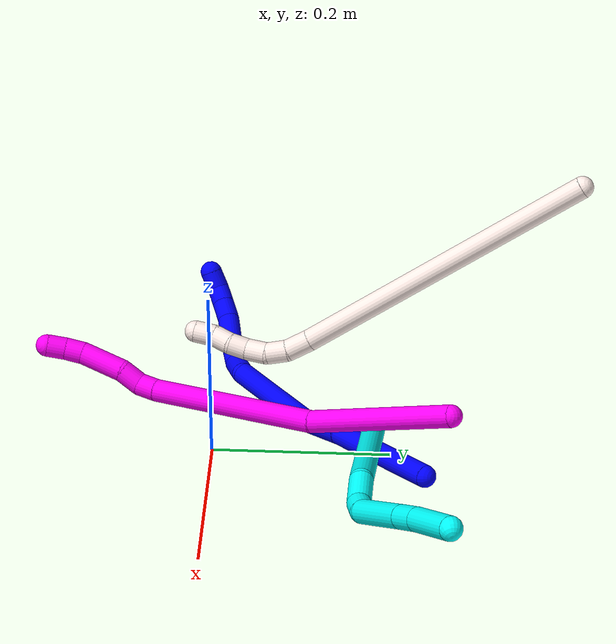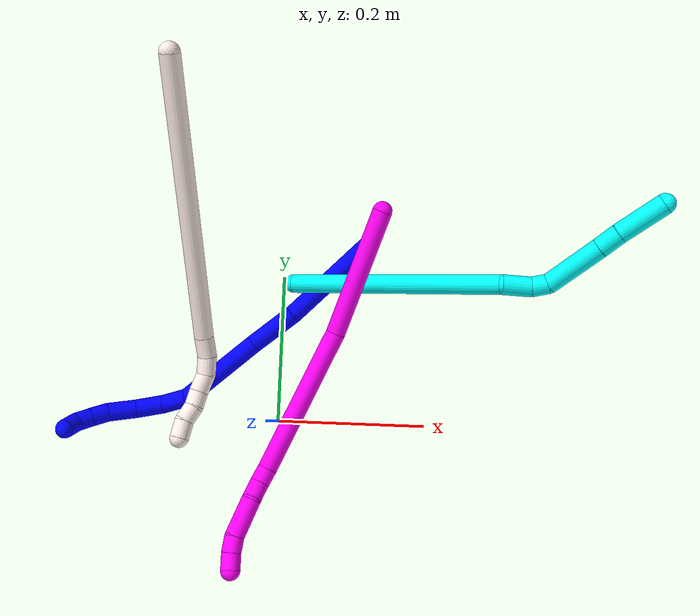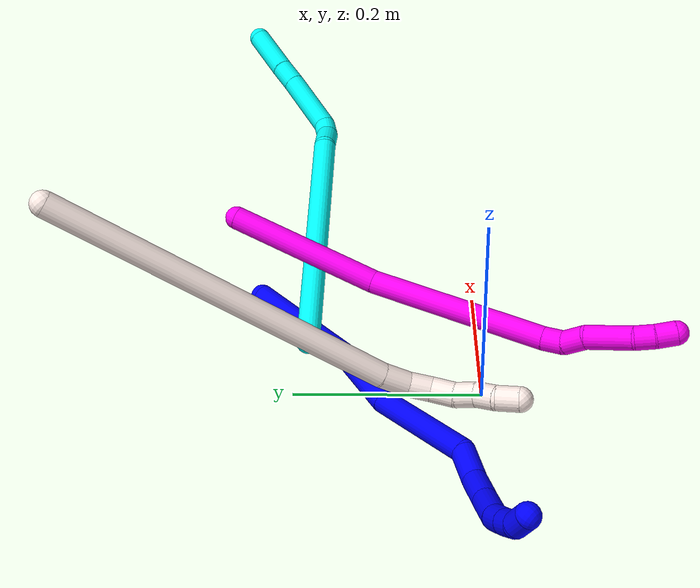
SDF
<sdf version="1.7">
 <world name="default">
  <model name="1">
   <static>0</static>
   <link name="1">
    <collision name="collision-cylinder-e_1_1_4">
     <pose>-0.00372 -0.014826 -0.066808 2.92321 -0.054304 -0.485698</pose>
     <geometry><cylinder><radius>0.0125</radius><length>0.137069</length></cylinder></geometry>
     <surface>
      <friction><ode><mu>1.16</mu><mu2>1.16</mu2><slip1>0</slip1><slip2>0</slip2></ode></friction>
      <contact><ode><kp>1e+06</kp><kd>1</kd><max_vel>0</max_vel><min_depth>0.001</min_depth></ode></contact>
     </surface>
    </collision>
    <visual name="visual-cylinder-e_1_1_4">
     <pose>-0.00372 -0.014826 -0.066808 2.92321 -0.054304 -0.485698</pose>
     <geometry><cylinder><radius>0.0125</radius><length>0.137069</length></cylinder></geometry>
     <material><ambient>0 0 1 1</ambient></material>
    </visual>
    <collision name="collision-cylinder-e_2_4_5">
     <pose>-0.014655 -0.031423 -0.16791 3.09 -0.207111 -2.65493</pose>
     <geometry><cylinder><radius>0.0125</radius><length>0.070177</length></cylinder></geometry>
     <surface>
      <friction><ode><mu>1.16</mu><mu2>1.16</mu2><slip1>0</slip1><slip2>0</slip2></ode></friction>
      <contact><ode><kp>1e+06</kp><kd>1</kd><max_vel>0</max_vel><min_depth>0.001</min_depth></ode></contact>
     </surface>
    </collision>
    <visual name="visual-cylinder-e_2_4_5">
     <pose>-0.014655 -0.031423 -0.16791 3.09 -0.207111 -2.65493</pose>
     <geometry><cylinder><radius>0.0125</radius><length>0.070177</length></cylinder></geometry>
     <material><ambient>0 0 1 1</ambient></material>
    </visual>
    <collision name="collision-cylinder-e_3_5_6">
     <pose>-0.026364 -0.054156 -0.256582 2.77367 -0.076948 -0.407999</pose>
     <geometry><cylinder><radius>0.0125</radius><length>0.116907</length></cylinder></geometry>
     <surface>
      <friction><ode><mu>1.16</mu><mu2>1.16</mu2><slip1>0</slip1><slip2>0</slip2></ode></friction>
      <contact><ode><kp>1e+06</kp><kd>1</kd><max_vel>0</max_vel><min_depth>0.001</min_depth></ode></contact>
     </surface>
    </collision>
    <visual name="visual-cylinder-e_3_5_6">
     <pose>-0.026364 -0.054156 -0.256582 2.77367 -0.076948 -0.407999</pose>
     <geometry><cylinder><radius>0.0125</radius><length>0.116907</length></cylinder></geometry>
     <material><ambient>0 0 1 1</ambient></material>
    </visual>
    <collision name="collision-cylinder-e_4_6_7">
     <pose>-0.040205 -0.077228 -0.326115 3.00324 -0.548481 -2.65863</pose>
     <geometry><cylinder><radius>0.0125</radius><length>0.035856</length></cylinder></geometry>
     <surface>
      <friction><ode><mu>1.16</mu><mu2>1.16</mu2><slip1>0</slip1><slip2>0</slip2></ode></friction>
      <contact><ode><kp>1e+06</kp><kd>1</kd><max_vel>0</max_vel><min_depth>0.001</min_depth></ode></contact>
     </surface>
    </collision>
    <visual name="visual-cylinder-e_4_6_7">
     <pose>-0.040205 -0.077228 -0.326115 3.00324 -0.548481 -2.65863</pose>
     <geometry><cylinder><radius>0.0125</radius><length>0.035856</length></cylinder></geometry>
     <material><ambient>0 0 1 1</ambient></material>
    </visual>
    <collision name="collision-cylinder-e_5_7_8">
     <pose>-0.059177 -0.088175 -0.354294 2.54554 -0.5488 -1.48363</pose>
     <geometry><cylinder><radius>0.0125</radius><length>0.036902</length></cylinder></geometry>
     <surface>
      <friction><ode><mu>1.16</mu><mu2>1.16</mu2><slip1>0</slip1><slip2>0</slip2></ode></friction>
      <contact><ode><kp>1e+06</kp><kd>1</kd><max_vel>0</max_vel><min_depth>0.001</min_depth></ode></contact>
     </surface>
    </collision>
    <visual name="visual-cylinder-e_5_7_8">
     <pose>-0.059177 -0.088175 -0.354294 2.54554 -0.5488 -1.48363</pose>
     <geometry><cylinder><radius>0.0125</radius><length>0.036902</length></cylinder></geometry>
     <material><ambient>0 0 1 1</ambient></material>
    </visual>
    <collision name="collision-cylinder-e_6_8_9">
     <pose>-0.078555 -0.108067 -0.379011 2.38408 -0.544878 -1.22416</pose>
     <geometry><cylinder><radius>0.0125</radius><length>0.03763</length></cylinder></geometry>
     <surface>
      <friction><ode><mu>1.16</mu><mu2>1.16</mu2><slip1>0</slip1><slip2>0</slip2></ode></friction>
      <contact><ode><kp>1e+06</kp><kd>1</kd><max_vel>0</max_vel><min_depth>0.001</min_depth></ode></contact>
     </surface>
    </collision>
    <visual name="visual-cylinder-e_6_8_9">
     <pose>-0.078555 -0.108067 -0.379011 2.38408 -0.544878 -1.22416</pose>
     <geometry><cylinder><radius>0.0125</radius><length>0.03763</length></cylinder></geometry>
     <material><ambient>0 0 1 1</ambient></material>
    </visual>
    <collision name="collision-cylinder-e_7_9_10">
     <pose>-0.091658 -0.128011 -0.397768 2.24253 -0.287038 -0.582035</pose>
     <geometry><cylinder><radius>0.0125</radius><length>0.023677</length></cylinder></geometry>
     <surface>
      <friction><ode><mu>1.16</mu><mu2>1.16</mu2><slip1>0</slip1><slip2>0</slip2></ode></friction>
      <contact><ode><kp>1e+06</kp><kd>1</kd><max_vel>0</max_vel><min_depth>0.001</min_depth></ode></contact>
     </surface>
    </collision>
    <visual name="visual-cylinder-e_7_9_10">
     <pose>-0.091658 -0.128011 -0.397768 2.24253 -0.287038 -0.582035</pose>
     <geometry><cylinder><radius>0.0125</radius><length>0.023677</length></cylinder></geometry>
     <material><ambient>0 0 1 1</ambient></material>
    </visual>
    <collision name="collision-cylinder-e_8_10_11">
     <pose>-0.097287 -0.144823 -0.41064 2.20308 -0.227776 -0.443759</pose>
     <geometry><cylinder><radius>0.0125</radius><length>0.020169</length></cylinder></geometry>
     <surface>
      <friction><ode><mu>1.16</mu><mu2>1.16</mu2><slip1>0</slip1><slip2>0</slip2></ode></friction>
      <contact><ode><kp>1e+06</kp><kd>1</kd><max_vel>0</max_vel><min_depth>0.001</min_depth></ode></contact>
     </surface>
    </collision>
    <visual name="visual-cylinder-e_8_10_11">
     <pose>-0.097287 -0.144823 -0.41064 2.20308 -0.227776 -0.443759</pose>
     <geometry><cylinder><radius>0.0125</radius><length>0.020169</length></cylinder></geometry>
     <material><ambient>0 0 1 1</ambient></material>
    </visual>
    <collision name="collision-cylinder-e_9_11_2">
     <pose>-0.098103 -0.16296 -0.419665 1.87617 0.13561 0.184693</pose>
     <geometry><cylinder><radius>0.0125</radius><length>0.021613</length></cylinder></geometry>
     <surface>
      <friction><ode><mu>1.16</mu><mu2>1.16</mu2><slip1>0</slip1><slip2>0</slip2></ode></friction>
      <contact><ode><kp>1e+06</kp><kd>1</kd><max_vel>0</max_vel><min_depth>0.001</min_depth></ode></contact>
     </surface>
    </collision>
    <visual name="visual-cylinder-e_9_11_2">
     <pose>-0.098103 -0.16296 -0.419665 1.87617 0.13561 0.184693</pose>
     <geometry><cylinder><radius>0.0125</radius><length>0.021613</length></cylinder></geometry>
     <material><ambient>0 0 1 1</ambient></material>
    </visual>
    <collision name="collision-sphere-2">
     <pose>-0.096642 -0.173172 -0.422884 0 -0 0</pose>
     <geometry><sphere><radius>0.0125</radius></sphere></geometry>
     <surface>
      <friction><ode><mu>1.16</mu><mu2>1.16</mu2><slip1>0</slip1><slip2>0</slip2></ode></friction>
      <contact><ode><kp>1e+06</kp><kd>1</kd><max_vel>0</max_vel><min_depth>0.001</min_depth></ode></contact>
     </surface>
    </collision>
    <visual name="visual-sphere-2">
     <pose>-0.096642 -0.173172 -0.422884 0 -0 0</pose>
     <geometry><sphere><radius>0.0125</radius></sphere></geometry>
     <material><ambient>0 0 1 1</ambient></material>
    </visual>
    <collision name="collision-sphere-11">
     <pose>-0.099564 -0.152748 -0.416445 0 -0 0</pose>
     <geometry><sphere><radius>0.0125</radius></sphere></geometry>
     <surface>
      <friction><ode><mu>1.16</mu><mu2>1.16</mu2><slip1>0</slip1><slip2>0</slip2></ode></friction>
      <contact><ode><kp>1e+06</kp><kd>1</kd><max_vel>0</max_vel><min_depth>0.001</min_depth></ode></contact>
     </surface>
    </collision>
    <visual name="visual-sphere-11">
     <pose>-0.099564 -0.152748 -0.416445 0 -0 0</pose>
     <geometry><sphere><radius>0.0125</radius></sphere></geometry>
     <material><ambient>0 0 1 1</ambient></material>
    </visual>
    <collision name="collision-sphere-10">
     <pose>-0.09501 -0.136898 -0.404834 0 -0 0</pose>
     <geometry><sphere><radius>0.0125</radius></sphere></geometry>
     <surface>
      <friction><ode><mu>1.16</mu><mu2>1.16</mu2><slip1>0</slip1><slip2>0</slip2></ode></friction>
      <contact><ode><kp>1e+06</kp><kd>1</kd><max_vel>0</max_vel><min_depth>0.001</min_depth></ode></contact>
     </surface>
    </collision>
    <visual name="visual-sphere-10">
     <pose>-0.09501 -0.136898 -0.404834 0 -0 0</pose>
     <geometry><sphere><radius>0.0125</radius></sphere></geometry>
     <material><ambient>0 0 1 1</ambient></material>
    </visual>
    <collision name="collision-sphere-9">
     <pose>-0.088307 -0.119123 -0.390701 0 -0 0</pose>
     <geometry><sphere><radius>0.0125</radius></sphere></geometry>
     <surface>
      <friction><ode><mu>1.16</mu><mu2>1.16</mu2><slip1>0</slip1><slip2>0</slip2></ode></friction>
      <contact><ode><kp>1e+06</kp><kd>1</kd><max_vel>0</max_vel><min_depth>0.001</min_depth></ode></contact>
     </surface>
    </collision>
    <visual name="visual-sphere-9">
     <pose>-0.088307 -0.119123 -0.390701 0 -0 0</pose>
     <geometry><sphere><radius>0.0125</radius></sphere></geometry>
     <material><ambient>0 0 1 1</ambient></material>
    </visual>
    <collision name="collision-sphere-4">
     <pose>-0.00744 -0.029652 -0.133617 0 -0 0</pose>
     <geometry><sphere><radius>0.0125</radius></sphere></geometry>
     <surface>
      <friction><ode><mu>1.16</mu><mu2>1.16</mu2><slip1>0</slip1><slip2>0</slip2></ode></friction>
      <contact><ode><kp>1e+06</kp><kd>1</kd><max_vel>0</max_vel><min_depth>0.001</min_depth></ode></contact>
     </surface>
    </collision>
    <visual name="visual-sphere-4">
     <pose>-0.00744 -0.029652 -0.133617 0 -0 0</pose>
     <geometry><sphere><radius>0.0125</radius></sphere></geometry>
     <material><ambient>0 0 1 1</ambient></material>
    </visual>
    <collision name="collision-sphere-1">
     <geometry><sphere><radius>0.0125</radius></sphere></geometry>
     <surface>
      <friction><ode><mu>1.16</mu><mu2>1.16</mu2><slip1>0</slip1><slip2>0</slip2></ode></friction>
      <contact><ode><kp>1e+06</kp><kd>1</kd><max_vel>0</max_vel><min_depth>0.001</min_depth></ode></contact>
     </surface>
    </collision>
    <visual name="visual-sphere-1">
     <geometry><sphere><radius>0.0125</radius></sphere></geometry>
     <material><ambient>0 0 1 1</ambient></material>
    </visual>
    <collision name="collision-sphere-8">
     <pose>-0.068803 -0.097011 -0.367321 0 -0 0</pose>
     <geometry><sphere><radius>0.0125</radius></sphere></geometry>
     <surface>
      <friction><ode><mu>1.16</mu><mu2>1.16</mu2><slip1>0</slip1><slip2>0</slip2></ode></friction>
      <contact><ode><kp>1e+06</kp><kd>1</kd><max_vel>0</max_vel><min_depth>0.001</min_depth></ode></contact>
     </surface>
    </collision>
    <visual name="visual-sphere-8">
     <pose>-0.068803 -0.097011 -0.367321 0 -0 0</pose>
     <geometry><sphere><radius>0.0125</radius></sphere></geometry>
     <material><ambient>0 0 1 1</ambient></material>
    </visual>
    <collision name="collision-sphere-5">
     <pose>-0.02187 -0.033193 -0.202202 0 -0 0</pose>
     <geometry><sphere><radius>0.0125</radius></sphere></geometry>
     <surface>
      <friction><ode><mu>1.16</mu><mu2>1.16</mu2><slip1>0</slip1><slip2>0</slip2></ode></friction>
      <contact><ode><kp>1e+06</kp><kd>1</kd><max_vel>0</max_vel><min_depth>0.001</min_depth></ode></contact>
     </surface>
    </collision>
    <visual name="visual-sphere-5">
     <pose>-0.02187 -0.033193 -0.202202 0 -0 0</pose>
     <geometry><sphere><radius>0.0125</radius></sphere></geometry>
     <material><ambient>0 0 1 1</ambient></material>
    </visual>
    <collision name="collision-sphere-6">
     <pose>-0.030857 -0.075118 -0.310962 0 -0 0</pose>
     <geometry><sphere><radius>0.0125</radius></sphere></geometry>
     <surface>
      <friction><ode><mu>1.16</mu><mu2>1.16</mu2><slip1>0</slip1><slip2>0</slip2></ode></friction>
      <contact><ode><kp>1e+06</kp><kd>1</kd><max_vel>0</max_vel><min_depth>0.001</min_depth></ode></contact>
     </surface>
    </collision>
    <visual name="visual-sphere-6">
     <pose>-0.030857 -0.075118 -0.310962 0 -0 0</pose>
     <geometry><sphere><radius>0.0125</radius></sphere></geometry>
     <material><ambient>0 0 1 1</ambient></material>
    </visual>
    <collision name="collision-sphere-7">
     <pose>-0.049552 -0.079338 -0.341267 0 -0 0</pose>
     <geometry><sphere><radius>0.0125</radius></sphere></geometry>
     <surface>
      <friction><ode><mu>1.16</mu><mu2>1.16</mu2><slip1>0</slip1><slip2>0</slip2></ode></friction>
      <contact><ode><kp>1e+06</kp><kd>1</kd><max_vel>0</max_vel><min_depth>0.001</min_depth></ode></contact>
     </surface>
    </collision>
    <visual name="visual-sphere-7">
     <pose>-0.049552 -0.079338 -0.341267 0 -0 0</pose>
     <geometry><sphere><radius>0.0125</radius></sphere></geometry>
     <material><ambient>0 0 1 1</ambient></material>
    </visual>
    <inertial>
     <pose>-0.034909 -0.060264 -0.233474 0 -0 0</pose>
     <mass>0.5</mass>
     <inertia>
      <ixx>0.000104</ixx>
      <ixy>0</ixy>
      <ixz>0</ixz>
      <iyy>-0.000471</iyy>
      <iyz>0</iyz>
      <izz>0.000115</izz>
     </inertia>
    </inertial>
   </link>
   <pose>0.113996 0.239681 0.054963 -1.24374 -0.195508 -0.763348</pose>
  </model>
  <model name="3">
   <static>0</static>
   <link name="3">
    <collision name="collision-cylinder-e_1_1_4">
     <pose>0.082713 -0.038091 0.107153 0.341552 0.628833 0.112049</pose>
     <geometry><cylinder><radius>0.0125</radius><length>0.281241</length></cylinder></geometry>
     <surface>
      <friction><ode><mu>1.16</mu><mu2>1.16</mu2><slip1>0</slip1><slip2>0</slip2></ode></friction>
      <contact><ode><kp>1e+06</kp><kd>1</kd><max_vel>0</max_vel><min_depth>0.001</min_depth></ode></contact>
     </surface>
    </collision>
    <visual name="visual-cylinder-e_1_1_4">
     <pose>0.082713 -0.038091 0.107153 0.341552 0.628833 0.112049</pose>
     <geometry><cylinder><radius>0.0125</radius><length>0.281241</length></cylinder></geometry>
     <material><ambient>0.003922 1 0.996078 1</ambient></material>
    </visual>
    <collision name="collision-cylinder-e_2_4_5">
     <pose>0.171278 -0.075389 0.231703 -0.045556 0.324108 -0.007449</pose>
     <geometry><cylinder><radius>0.0125</radius><length>0.036745</length></cylinder></geometry>
     <surface>
      <friction><ode><mu>1.16</mu><mu2>1.16</mu2><slip1>0</slip1><slip2>0</slip2></ode></friction>
      <contact><ode><kp>1e+06</kp><kd>1</kd><max_vel>0</max_vel><min_depth>0.001</min_depth></ode></contact>
     </surface>
    </collision>
    <visual name="visual-cylinder-e_2_4_5">
     <pose>0.171278 -0.075389 0.231703 -0.045556 0.324108 -0.007449</pose>
     <geometry><cylinder><radius>0.0125</radius><length>0.036745</length></cylinder></geometry>
     <material><ambient>0.003922 1 0.996078 1</ambient></material>
    </visual>
    <collision name="collision-cylinder-e_3_5_6">
     <pose>0.180848 -0.077917 0.258364 0.344214 0.361359 0.063485</pose>
     <geometry><cylinder><radius>0.0125</radius><length>0.02104</length></cylinder></geometry>
     <surface>
      <friction><ode><mu>1.16</mu><mu2>1.16</mu2><slip1>0</slip1><slip2>0</slip2></ode></friction>
      <contact><ode><kp>1e+06</kp><kd>1</kd><max_vel>0</max_vel><min_depth>0.001</min_depth></ode></contact>
     </surface>
    </collision>
    <visual name="visual-cylinder-e_3_5_6">
     <pose>0.180848 -0.077917 0.258364 0.344214 0.361359 0.063485</pose>
     <geometry><cylinder><radius>0.0125</radius><length>0.02104</length></cylinder></geometry>
     <material><ambient>0.003922 1 0.996078 1</ambient></material>
    </visual>
    <collision name="collision-cylinder-e_4_6_7">
     <pose>0.191571 -0.107845 0.292422 0.82065 0.19024 0.08296</pose>
     <geometry><cylinder><radius>0.0125</radius><length>0.074074</length></cylinder></geometry>
     <surface>
      <friction><ode><mu>1.16</mu><mu2>1.16</mu2><slip1>0</slip1><slip2>0</slip2></ode></friction>
      <contact><ode><kp>1e+06</kp><kd>1</kd><max_vel>0</max_vel><min_depth>0.001</min_depth></ode></contact>
     </surface>
    </collision>
    <visual name="visual-cylinder-e_4_6_7">
     <pose>0.191571 -0.107845 0.292422 0.82065 0.19024 0.08296</pose>
     <geometry><cylinder><radius>0.0125</radius><length>0.074074</length></cylinder></geometry>
     <material><ambient>0.003922 1 0.996078 1</ambient></material>
    </visual>
    <collision name="collision-cylinder-e_5_7_8">
     <pose>0.200664 -0.144284 0.326437 0.817491 0.153796 0.066722</pose>
     <geometry><cylinder><radius>0.0125</radius><length>0.027282</length></cylinder></geometry>
     <surface>
      <friction><ode><mu>1.16</mu><mu2>1.16</mu2><slip1>0</slip1><slip2>0</slip2></ode></friction>
      <contact><ode><kp>1e+06</kp><kd>1</kd><max_vel>0</max_vel><min_depth>0.001</min_depth></ode></contact>
     </surface>
    </collision>
    <visual name="visual-cylinder-e_5_7_8">
     <pose>0.200664 -0.144284 0.326437 0.817491 0.153796 0.066722</pose>
     <geometry><cylinder><radius>0.0125</radius><length>0.027282</length></cylinder></geometry>
     <material><ambient>0.003922 1 0.996078 1</ambient></material>
    </visual>
    <collision name="collision-cylinder-e_6_8_2">
     <pose>0.207922 -0.174103 0.357163 0.748805 0.174261 0.068621</pose>
     <geometry><cylinder><radius>0.0125</radius><length>0.059618</length></cylinder></geometry>
     <surface>
      <friction><ode><mu>1.16</mu><mu2>1.16</mu2><slip1>0</slip1><slip2>0</slip2></ode></friction>
      <contact><ode><kp>1e+06</kp><kd>1</kd><max_vel>0</max_vel><min_depth>0.001</min_depth></ode></contact>
     </surface>
    </collision>
    <visual name="visual-cylinder-e_6_8_2">
     <pose>0.207922 -0.174103 0.357163 0.748805 0.174261 0.068621</pose>
     <geometry><cylinder><radius>0.0125</radius><length>0.059618</length></cylinder></geometry>
     <material><ambient>0.003922 1 0.996078 1</ambient></material>
    </visual>
    <collision name="collision-sphere-2">
     <pose>0.21309 -0.194088 0.378668 0 -0 0</pose>
     <geometry><sphere><radius>0.0125</radius></sphere></geometry>
     <surface>
      <friction><ode><mu>1.16</mu><mu2>1.16</mu2><slip1>0</slip1><slip2>0</slip2></ode></friction>
      <contact><ode><kp>1e+06</kp><kd>1</kd><max_vel>0</max_vel><min_depth>0.001</min_depth></ode></contact>
     </surface>
    </collision>
    <visual name="visual-sphere-2">
     <pose>0.21309 -0.194088 0.378668 0 -0 0</pose>
     <geometry><sphere><radius>0.0125</radius></sphere></geometry>
     <material><ambient>0.003922 1 0.996078 1</ambient></material>
    </visual>
    <collision name="collision-sphere-4">
     <pose>0.165427 -0.076182 0.214306 0 -0 0</pose>
     <geometry><sphere><radius>0.0125</radius></sphere></geometry>
     <surface>
      <friction><ode><mu>1.16</mu><mu2>1.16</mu2><slip1>0</slip1><slip2>0</slip2></ode></friction>
      <contact><ode><kp>1e+06</kp><kd>1</kd><max_vel>0</max_vel><min_depth>0.001</min_depth></ode></contact>
     </surface>
    </collision>
    <visual name="visual-sphere-4">
     <pose>0.165427 -0.076182 0.214306 0 -0 0</pose>
     <geometry><sphere><radius>0.0125</radius></sphere></geometry>
     <material><ambient>0.003922 1 0.996078 1</ambient></material>
    </visual>
    <collision name="collision-sphere-1">
     <geometry><sphere><radius>0.0125</radius></sphere></geometry>
     <surface>
      <friction><ode><mu>1.16</mu><mu2>1.16</mu2><slip1>0</slip1><slip2>0</slip2></ode></friction>
      <contact><ode><kp>1e+06</kp><kd>1</kd><max_vel>0</max_vel><min_depth>0.001</min_depth></ode></contact>
     </surface>
    </collision>
    <visual name="visual-sphere-1">
     <geometry><sphere><radius>0.0125</radius></sphere></geometry>
     <material><ambient>0.003922 1 0.996078 1</ambient></material>
    </visual>
    <collision name="collision-sphere-8">
     <pose>0.202753 -0.154117 0.335658 0 -0 0</pose>
     <geometry><sphere><radius>0.0125</radius></sphere></geometry>
     <surface>
      <friction><ode><mu>1.16</mu><mu2>1.16</mu2><slip1>0</slip1><slip2>0</slip2></ode></friction>
      <contact><ode><kp>1e+06</kp><kd>1</kd><max_vel>0</max_vel><min_depth>0.001</min_depth></ode></contact>
     </surface>
    </collision>
    <visual name="visual-sphere-8">
     <pose>0.202753 -0.154117 0.335658 0 -0 0</pose>
     <geometry><sphere><radius>0.0125</radius></sphere></geometry>
     <material><ambient>0.003922 1 0.996078 1</ambient></material>
    </visual>
    <collision name="collision-sphere-5">
     <pose>0.177128 -0.074596 0.249101 0 -0 0</pose>
     <geometry><sphere><radius>0.0125</radius></sphere></geometry>
     <surface>
      <friction><ode><mu>1.16</mu><mu2>1.16</mu2><slip1>0</slip1><slip2>0</slip2></ode></friction>
      <contact><ode><kp>1e+06</kp><kd>1</kd><max_vel>0</max_vel><min_depth>0.001</min_depth></ode></contact>
     </surface>
    </collision>
    <visual name="visual-sphere-5">
     <pose>0.177128 -0.074596 0.249101 0 -0 0</pose>
     <geometry><sphere><radius>0.0125</radius></sphere></geometry>
     <material><ambient>0.003922 1 0.996078 1</ambient></material>
    </visual>
    <collision name="collision-sphere-6">
     <pose>0.184567 -0.081238 0.267628 0 -0 0</pose>
     <geometry><sphere><radius>0.0125</radius></sphere></geometry>
     <surface>
      <friction><ode><mu>1.16</mu><mu2>1.16</mu2><slip1>0</slip1><slip2>0</slip2></ode></friction>
      <contact><ode><kp>1e+06</kp><kd>1</kd><max_vel>0</max_vel><min_depth>0.001</min_depth></ode></contact>
     </surface>
    </collision>
    <visual name="visual-sphere-6">
     <pose>0.184567 -0.081238 0.267628 0 -0 0</pose>
     <geometry><sphere><radius>0.0125</radius></sphere></geometry>
     <material><ambient>0.003922 1 0.996078 1</ambient></material>
    </visual>
    <collision name="collision-sphere-7">
     <pose>0.198574 -0.134452 0.317217 0 -0 0</pose>
     <geometry><sphere><radius>0.0125</radius></sphere></geometry>
     <surface>
      <friction><ode><mu>1.16</mu><mu2>1.16</mu2><slip1>0</slip1><slip2>0</slip2></ode></friction>
      <contact><ode><kp>1e+06</kp><kd>1</kd><max_vel>0</max_vel><min_depth>0.001</min_depth></ode></contact>
     </surface>
    </collision>
    <visual name="visual-sphere-7">
     <pose>0.198574 -0.134452 0.317217 0 -0 0</pose>
     <geometry><sphere><radius>0.0125</radius></sphere></geometry>
     <material><ambient>0.003922 1 0.996078 1</ambient></material>
    </visual>
    <inertial>
     <pose>0.130844 -0.074854 0.191892 0 -0 0</pose>
     <mass>0.5</mass>
     <inertia>
      <ixx>0.001754</ixx>
      <ixy>0</ixy>
      <ixz>0</ixz>
      <iyy>0.001994</iyy>
      <iyz>0</iyz>
      <izz>-0.000533</izz>
     </inertia>
    </inertial>
   </link>
   <pose>0.01675 0.18354 0.055494 -1.91262 -0.734456 -1.10719</pose>
  </model>
  <model name="10">
   <static>0</static>
   <link name="10">
    <collision name="collision-cylinder-e_1_1_4">
     <pose>-0.031779 -0.074865 -0.019141 1.82112 -0.390172 -0.498378</pose>
     <geometry><cylinder><radius>0.0125</radius><length>0.167105</length></cylinder></geometry>
     <surface>
      <friction><ode><mu>1.16</mu><mu2>1.16</mu2><slip1>0</slip1><slip2>0</slip2></ode></friction>
      <contact><ode><kp>1e+06</kp><kd>1</kd><max_vel>0</max_vel><min_depth>0.001</min_depth></ode></contact>
     </surface>
    </collision>
    <visual name="visual-cylinder-e_1_1_4">
     <pose>-0.031779 -0.074865 -0.019141 1.82112 -0.390172 -0.498378</pose>
     <geometry><cylinder><radius>0.0125</radius><length>0.167105</length></cylinder></geometry>
     <material><ambient>1 0 0.964706 1</ambient></material>
    </visual>
    <collision name="collision-cylinder-e_2_4_5">
     <pose>-0.080368 -0.242442 -0.062187 1.82313 -0.1738 -0.223921</pose>
     <geometry><cylinder><radius>0.0125</radius><length>0.194417</length></cylinder></geometry>
     <surface>
      <friction><ode><mu>1.16</mu><mu2>1.16</mu2><slip1>0</slip1><slip2>0</slip2></ode></friction>
      <contact><ode><kp>1e+06</kp><kd>1</kd><max_vel>0</max_vel><min_depth>0.001</min_depth></ode></contact>
     </surface>
    </collision>
    <visual name="visual-cylinder-e_2_4_5">
     <pose>-0.080368 -0.242442 -0.062187 1.82313 -0.1738 -0.223921</pose>
     <geometry><cylinder><radius>0.0125</radius><length>0.194417</length></cylinder></geometry>
     <material><ambient>1 0 0.964706 1</ambient></material>
    </visual>
    <collision name="collision-cylinder-e_3_5_6">
     <pose>-0.097496 -0.345718 -0.089225 1.85921 -0.028828 -0.03862</pose>
     <geometry><cylinder><radius>0.0125</radius><length>0.022048</length></cylinder></geometry>
     <surface>
      <friction><ode><mu>1.16</mu><mu2>1.16</mu2><slip1>0</slip1><slip2>0</slip2></ode></friction>
      <contact><ode><kp>1e+06</kp><kd>1</kd><max_vel>0</max_vel><min_depth>0.001</min_depth></ode></contact>
     </surface>
    </collision>
    <visual name="visual-cylinder-e_3_5_6">
     <pose>-0.097496 -0.345718 -0.089225 1.85921 -0.028828 -0.03862</pose>
     <geometry><cylinder><radius>0.0125</radius><length>0.022048</length></cylinder></geometry>
     <material><ambient>1 0 0.964706 1</ambient></material>
    </visual>
    <collision name="collision-cylinder-e_4_6_7">
     <pose>-0.09339 -0.366202 -0.098368 2.11543 0.364352 0.632028</pose>
     <geometry><cylinder><radius>0.0125</radius><length>0.024824</length></cylinder></geometry>
     <surface>
      <friction><ode><mu>1.16</mu><mu2>1.16</mu2><slip1>0</slip1><slip2>0</slip2></ode></friction>
      <contact><ode><kp>1e+06</kp><kd>1</kd><max_vel>0</max_vel><min_depth>0.001</min_depth></ode></contact>
     </surface>
    </collision>
    <visual name="visual-cylinder-e_4_6_7">
     <pose>-0.09339 -0.366202 -0.098368 2.11543 0.364352 0.632028</pose>
     <geometry><cylinder><radius>0.0125</radius><length>0.024824</length></cylinder></geometry>
     <material><ambient>1 0 0.964706 1</ambient></material>
    </visual>
    <collision name="collision-cylinder-e_5_7_8">
     <pose>-0.086755 -0.398623 -0.114743 2.00248 0.089069 0.138965</pose>
     <geometry><cylinder><radius>0.0125</radius><length>0.049746</length></cylinder></geometry>
     <surface>
      <friction><ode><mu>1.16</mu><mu2>1.16</mu2><slip1>0</slip1><slip2>0</slip2></ode></friction>
      <contact><ode><kp>1e+06</kp><kd>1</kd><max_vel>0</max_vel><min_depth>0.001</min_depth></ode></contact>
     </surface>
    </collision>
    <visual name="visual-cylinder-e_5_7_8">
     <pose>-0.086755 -0.398623 -0.114743 2.00248 0.089069 0.138965</pose>
     <geometry><cylinder><radius>0.0125</radius><length>0.049746</length></cylinder></geometry>
     <material><ambient>1 0 0.964706 1</ambient></material>
    </visual>
    <collision name="collision-cylinder-e_6_8_9">
     <pose>-0.084905 -0.429404 -0.131275 2.21095 -0.035061 -0.069808</pose>
     <geometry><cylinder><radius>0.0125</radius><length>0.020662</length></cylinder></geometry>
     <surface>
      <friction><ode><mu>1.16</mu><mu2>1.16</mu2><slip1>0</slip1><slip2>0</slip2></ode></friction>
      <contact><ode><kp>1e+06</kp><kd>1</kd><max_vel>0</max_vel><min_depth>0.001</min_depth></ode></contact>
     </surface>
    </collision>
    <visual name="visual-cylinder-e_6_8_9">
     <pose>-0.084905 -0.429404 -0.131275 2.21095 -0.035061 -0.069808</pose>
     <geometry><cylinder><radius>0.0125</radius><length>0.020662</length></cylinder></geometry>
     <material><ambient>1 0 0.964706 1</ambient></material>
    </visual>
    <collision name="collision-cylinder-e_7_9_2">
     <pose>-0.086064 -0.445155 -0.144919 2.35661 -0.075318 -0.181525</pose>
     <geometry><cylinder><radius>0.0125</radius><length>0.021198</length></cylinder></geometry>
     <surface>
      <friction><ode><mu>1.16</mu><mu2>1.16</mu2><slip1>0</slip1><slip2>0</slip2></ode></friction>
      <contact><ode><kp>1e+06</kp><kd>1</kd><max_vel>0</max_vel><min_depth>0.001</min_depth></ode></contact>
     </surface>
    </collision>
    <visual name="visual-cylinder-e_7_9_2">
     <pose>-0.086064 -0.445155 -0.144919 2.35661 -0.075318 -0.181525</pose>
     <geometry><cylinder><radius>0.0125</radius><length>0.021198</length></cylinder></geometry>
     <material><ambient>1 0 0.964706 1</ambient></material>
    </visual>
    <collision name="collision-sphere-2">
     <pose>-0.086862 -0.452625 -0.152395 0 -0 0</pose>
     <geometry><sphere><radius>0.0125</radius></sphere></geometry>
     <surface>
      <friction><ode><mu>1.16</mu><mu2>1.16</mu2><slip1>0</slip1><slip2>0</slip2></ode></friction>
      <contact><ode><kp>1e+06</kp><kd>1</kd><max_vel>0</max_vel><min_depth>0.001</min_depth></ode></contact>
     </surface>
    </collision>
    <visual name="visual-sphere-2">
     <pose>-0.086862 -0.452625 -0.152395 0 -0 0</pose>
     <geometry><sphere><radius>0.0125</radius></sphere></geometry>
     <material><ambient>1 0 0.964706 1</ambient></material>
    </visual>
    <collision name="collision-sphere-9">
     <pose>-0.085267 -0.437684 -0.137442 0 -0 0</pose>
     <geometry><sphere><radius>0.0125</radius></sphere></geometry>
     <surface>
      <friction><ode><mu>1.16</mu><mu2>1.16</mu2><slip1>0</slip1><slip2>0</slip2></ode></friction>
      <contact><ode><kp>1e+06</kp><kd>1</kd><max_vel>0</max_vel><min_depth>0.001</min_depth></ode></contact>
     </surface>
    </collision>
    <visual name="visual-sphere-9">
     <pose>-0.085267 -0.437684 -0.137442 0 -0 0</pose>
     <geometry><sphere><radius>0.0125</radius></sphere></geometry>
     <material><ambient>1 0 0.964706 1</ambient></material>
    </visual>
    <collision name="collision-sphere-4">
     <pose>-0.063558 -0.149729 -0.038283 0 -0 0</pose>
     <geometry><sphere><radius>0.0125</radius></sphere></geometry>
     <surface>
      <friction><ode><mu>1.16</mu><mu2>1.16</mu2><slip1>0</slip1><slip2>0</slip2></ode></friction>
      <contact><ode><kp>1e+06</kp><kd>1</kd><max_vel>0</max_vel><min_depth>0.001</min_depth></ode></contact>
     </surface>
    </collision>
    <visual name="visual-sphere-4">
     <pose>-0.063558 -0.149729 -0.038283 0 -0 0</pose>
     <geometry><sphere><radius>0.0125</radius></sphere></geometry>
     <material><ambient>1 0 0.964706 1</ambient></material>
    </visual>
    <collision name="collision-sphere-1">
     <geometry><sphere><radius>0.0125</radius></sphere></geometry>
     <surface>
      <friction><ode><mu>1.16</mu><mu2>1.16</mu2><slip1>0</slip1><slip2>0</slip2></ode></friction>
      <contact><ode><kp>1e+06</kp><kd>1</kd><max_vel>0</max_vel><min_depth>0.001</min_depth></ode></contact>
     </surface>
    </collision>
    <visual name="visual-sphere-1">
     <geometry><sphere><radius>0.0125</radius></sphere></geometry>
     <material><ambient>1 0 0.964706 1</ambient></material>
    </visual>
    <collision name="collision-sphere-8">
     <pose>-0.084542 -0.421124 -0.125108 0 -0 0</pose>
     <geometry><sphere><radius>0.0125</radius></sphere></geometry>
     <surface>
      <friction><ode><mu>1.16</mu><mu2>1.16</mu2><slip1>0</slip1><slip2>0</slip2></ode></friction>
      <contact><ode><kp>1e+06</kp><kd>1</kd><max_vel>0</max_vel><min_depth>0.001</min_depth></ode></contact>
     </surface>
    </collision>
    <visual name="visual-sphere-8">
     <pose>-0.084542 -0.421124 -0.125108 0 -0 0</pose>
     <geometry><sphere><radius>0.0125</radius></sphere></geometry>
     <material><ambient>1 0 0.964706 1</ambient></material>
    </visual>
    <collision name="collision-sphere-5">
     <pose>-0.097178 -0.335154 -0.086091 0 -0 0</pose>
     <geometry><sphere><radius>0.0125</radius></sphere></geometry>
     <surface>
      <friction><ode><mu>1.16</mu><mu2>1.16</mu2><slip1>0</slip1><slip2>0</slip2></ode></friction>
      <contact><ode><kp>1e+06</kp><kd>1</kd><max_vel>0</max_vel><min_depth>0.001</min_depth></ode></contact>
     </surface>
    </collision>
    <visual name="visual-sphere-5">
     <pose>-0.097178 -0.335154 -0.086091 0 -0 0</pose>
     <geometry><sphere><radius>0.0125</radius></sphere></geometry>
     <material><ambient>1 0 0.964706 1</ambient></material>
    </visual>
    <collision name="collision-sphere-6">
     <pose>-0.097813 -0.356282 -0.09236 0 -0 0</pose>
     <geometry><sphere><radius>0.0125</radius></sphere></geometry>
     <surface>
      <friction><ode><mu>1.16</mu><mu2>1.16</mu2><slip1>0</slip1><slip2>0</slip2></ode></friction>
      <contact><ode><kp>1e+06</kp><kd>1</kd><max_vel>0</max_vel><min_depth>0.001</min_depth></ode></contact>
     </surface>
    </collision>
    <visual name="visual-sphere-6">
     <pose>-0.097813 -0.356282 -0.09236 0 -0 0</pose>
     <geometry><sphere><radius>0.0125</radius></sphere></geometry>
     <material><ambient>1 0 0.964706 1</ambient></material>
    </visual>
    <collision name="collision-sphere-7">
     <pose>-0.088967 -0.376121 -0.104377 0 -0 0</pose>
     <geometry><sphere><radius>0.0125</radius></sphere></geometry>
     <surface>
      <friction><ode><mu>1.16</mu><mu2>1.16</mu2><slip1>0</slip1><slip2>0</slip2></ode></friction>
      <contact><ode><kp>1e+06</kp><kd>1</kd><max_vel>0</max_vel><min_depth>0.001</min_depth></ode></contact>
     </surface>
    </collision>
    <visual name="visual-sphere-7">
     <pose>-0.088967 -0.376121 -0.104377 0 -0 0</pose>
     <geometry><sphere><radius>0.0125</radius></sphere></geometry>
     <material><ambient>1 0 0.964706 1</ambient></material>
    </visual>
    <inertial>
     <pose>-0.066595 -0.228993 -0.062381 0 -0 0</pose>
     <mass>0.5</mass>
     <inertia>
      <ixx>0.00062</ixx>
      <ixy>0</ixy>
      <ixz>0</ixz>
      <iyy>-0.000496</iyy>
      <iyz>0</iyz>
      <izz>0.001206</izz>
     </inertia>
    </inertial>
   </link>
   <pose>0.128371 0.265588 0.144884 3.01926 -1.14069 2.51949</pose>
  </model>
  <model name="11">
   <static>0</static>
   <link name="11">
    <collision name="collision-cylinder-e_1_1_4">
     <pose>0.071266 -0.05622 -0.154085 2.79174 0.409885 1.73232</pose>
     <geometry><cylinder><radius>0.0125</radius><length>0.357669</length></cylinder></geometry>
     <surface>
      <friction><ode><mu>1.16</mu><mu2>1.16</mu2><slip1>0</slip1><slip2>0</slip2></ode></friction>
      <contact><ode><kp>1e+06</kp><kd>1</kd><max_vel>0</max_vel><min_depth>0.001</min_depth></ode></contact>
     </surface>
    </collision>
    <visual name="visual-cylinder-e_1_1_4">
     <pose>0.071266 -0.05622 -0.154085 2.79174 0.409885 1.73232</pose>
     <geometry><cylinder><radius>0.0125</radius><length>0.357669</length></cylinder></geometry>
     <material><ambient>1 0.933333 0.909804 1</ambient></material>
    </visual>
    <collision name="collision-cylinder-e_2_4_5">
     <pose>0.148432 -0.118422 -0.319555 2.65772 0.430089 1.44907</pose>
     <geometry><cylinder><radius>0.0125</radius><length>0.028298</length></cylinder></geometry>
     <surface>
      <friction><ode><mu>1.16</mu><mu2>1.16</mu2><slip1>0</slip1><slip2>0</slip2></ode></friction>
      <contact><ode><kp>1e+06</kp><kd>1</kd><max_vel>0</max_vel><min_depth>0.001</min_depth></ode></contact>
     </surface>
    </collision>
    <visual name="visual-cylinder-e_2_4_5">
     <pose>0.148432 -0.118422 -0.319555 2.65772 0.430089 1.44907</pose>
     <geometry><cylinder><radius>0.0125</radius><length>0.028298</length></cylinder></geometry>
     <material><ambient>1 0.933333 0.909804 1</ambient></material>
    </visual>
    <collision name="collision-cylinder-e_3_5_6">
     <pose>0.156434 -0.131581 -0.340312 2.48819 0.17628 0.510224</pose>
     <geometry><cylinder><radius>0.0125</radius><length>0.023981</length></cylinder></geometry>
     <surface>
      <friction><ode><mu>1.16</mu><mu2>1.16</mu2><slip1>0</slip1><slip2>0</slip2></ode></friction>
      <contact><ode><kp>1e+06</kp><kd>1</kd><max_vel>0</max_vel><min_depth>0.001</min_depth></ode></contact>
     </surface>
    </collision>
    <visual name="visual-cylinder-e_3_5_6">
     <pose>0.156434 -0.131581 -0.340312 2.48819 0.17628 0.510224</pose>
     <geometry><cylinder><radius>0.0125</radius><length>0.023981</length></cylinder></geometry>
     <material><ambient>1 0.933333 0.909804 1</ambient></material>
    </visual>
    <collision name="collision-cylinder-e_4_6_7">
     <pose>0.156161 -0.14633 -0.359132 2.46581 -0.19379 -0.539771</pose>
     <geometry><cylinder><radius>0.0125</radius><length>0.024677</length></cylinder></geometry>
     <surface>
      <friction><ode><mu>1.16</mu><mu2>1.16</mu2><slip1>0</slip1><slip2>0</slip2></ode></friction>
      <contact><ode><kp>1e+06</kp><kd>1</kd><max_vel>0</max_vel><min_depth>0.001</min_depth></ode></contact>
     </surface>
    </collision>
    <visual name="visual-cylinder-e_4_6_7">
     <pose>0.156161 -0.14633 -0.359132 2.46581 -0.19379 -0.539771</pose>
     <geometry><cylinder><radius>0.0125</radius><length>0.024677</length></cylinder></geometry>
     <material><ambient>1 0.933333 0.909804 1</ambient></material>
    </visual>
    <collision name="collision-cylinder-e_5_7_8">
     <pose>0.15188 -0.162185 -0.374611 2.20037 -0.183825 -0.35847</pose>
     <geometry><cylinder><radius>0.0125</radius><length>0.020842</length></cylinder></geometry>
     <surface>
      <friction><ode><mu>1.16</mu><mu2>1.16</mu2><slip1>0</slip1><slip2>0</slip2></ode></friction>
      <contact><ode><kp>1e+06</kp><kd>1</kd><max_vel>0</max_vel><min_depth>0.001</min_depth></ode></contact>
     </surface>
    </collision>
    <visual name="visual-cylinder-e_5_7_8">
     <pose>0.15188 -0.162185 -0.374611 2.20037 -0.183825 -0.35847</pose>
     <geometry><cylinder><radius>0.0125</radius><length>0.020842</length></cylinder></geometry>
     <material><ambient>1 0.933333 0.909804 1</ambient></material>
    </visual>
    <collision name="collision-cylinder-e_6_8_9">
     <pose>0.145606 -0.177171 -0.387575 2.37281 -0.425373 -0.98073</pose>
     <geometry><cylinder><radius>0.0125</radius><length>0.021175</length></cylinder></geometry>
     <surface>
      <friction><ode><mu>1.16</mu><mu2>1.16</mu2><slip1>0</slip1><slip2>0</slip2></ode></friction>
      <contact><ode><kp>1e+06</kp><kd>1</kd><max_vel>0</max_vel><min_depth>0.001</min_depth></ode></contact>
     </surface>
    </collision>
    <visual name="visual-cylinder-e_6_8_9">
     <pose>0.145606 -0.177171 -0.387575 2.37281 -0.425373 -0.98073</pose>
     <geometry><cylinder><radius>0.0125</radius><length>0.021175</length></cylinder></geometry>
     <material><ambient>1 0.933333 0.909804 1</ambient></material>
    </visual>
    <collision name="collision-cylinder-e_7_9_2">
     <pose>0.139774 -0.19256 -0.402177 2.29427 -0.125622 -0.277138</pose>
     <geometry><cylinder><radius>0.0125</radius><length>0.023358</length></cylinder></geometry>
     <surface>
      <friction><ode><mu>1.16</mu><mu2>1.16</mu2><slip1>0</slip1><slip2>0</slip2></ode></friction>
      <contact><ode><kp>1e+06</kp><kd>1</kd><max_vel>0</max_vel><min_depth>0.001</min_depth></ode></contact>
     </surface>
    </collision>
    <visual name="visual-cylinder-e_7_9_2">
     <pose>0.139774 -0.19256 -0.402177 2.29427 -0.125622 -0.277138</pose>
     <geometry><cylinder><radius>0.0125</radius><length>0.023358</length></cylinder></geometry>
     <material><ambient>1 0.933333 0.909804 1</ambient></material>
    </visual>
    <collision name="collision-sphere-2">
     <pose>0.13831 -0.201245 -0.409847 0 -0 0</pose>
     <geometry><sphere><radius>0.0125</radius></sphere></geometry>
     <surface>
      <friction><ode><mu>1.16</mu><mu2>1.16</mu2><slip1>0</slip1><slip2>0</slip2></ode></friction>
      <contact><ode><kp>1e+06</kp><kd>1</kd><max_vel>0</max_vel><min_depth>0.001</min_depth></ode></contact>
     </surface>
    </collision>
    <visual name="visual-sphere-2">
     <pose>0.13831 -0.201245 -0.409847 0 -0 0</pose>
     <geometry><sphere><radius>0.0125</radius></sphere></geometry>
     <material><ambient>1 0.933333 0.909804 1</ambient></material>
    </visual>
    <collision name="collision-sphere-9">
     <pose>0.141237 -0.183876 -0.394507 0 -0 0</pose>
     <geometry><sphere><radius>0.0125</radius></sphere></geometry>
     <surface>
      <friction><ode><mu>1.16</mu><mu2>1.16</mu2><slip1>0</slip1><slip2>0</slip2></ode></friction>
      <contact><ode><kp>1e+06</kp><kd>1</kd><max_vel>0</max_vel><min_depth>0.001</min_depth></ode></contact>
     </surface>
    </collision>
    <visual name="visual-sphere-9">
     <pose>0.141237 -0.183876 -0.394507 0 -0 0</pose>
     <geometry><sphere><radius>0.0125</radius></sphere></geometry>
     <material><ambient>1 0.933333 0.909804 1</ambient></material>
    </visual>
    <collision name="collision-sphere-4">
     <pose>0.142533 -0.112439 -0.308171 0 -0 0</pose>
     <geometry><sphere><radius>0.0125</radius></sphere></geometry>
     <surface>
      <friction><ode><mu>1.16</mu><mu2>1.16</mu2><slip1>0</slip1><slip2>0</slip2></ode></friction>
      <contact><ode><kp>1e+06</kp><kd>1</kd><max_vel>0</max_vel><min_depth>0.001</min_depth></ode></contact>
     </surface>
    </collision>
    <visual name="visual-sphere-4">
     <pose>0.142533 -0.112439 -0.308171 0 -0 0</pose>
     <geometry><sphere><radius>0.0125</radius></sphere></geometry>
     <material><ambient>1 0.933333 0.909804 1</ambient></material>
    </visual>
    <collision name="collision-sphere-1">
     <geometry><sphere><radius>0.0125</radius></sphere></geometry>
     <surface>
      <friction><ode><mu>1.16</mu><mu2>1.16</mu2><slip1>0</slip1><slip2>0</slip2></ode></friction>
      <contact><ode><kp>1e+06</kp><kd>1</kd><max_vel>0</max_vel><min_depth>0.001</min_depth></ode></contact>
     </surface>
    </collision>
    <visual name="visual-sphere-1">
     <geometry><sphere><radius>0.0125</radius></sphere></geometry>
     <material><ambient>1 0.933333 0.909804 1</ambient></material>
    </visual>
    <collision name="collision-sphere-8">
     <pose>0.149975 -0.170466 -0.380644 0 -0 0</pose>
     <geometry><sphere><radius>0.0125</radius></sphere></geometry>
     <surface>
      <friction><ode><mu>1.16</mu><mu2>1.16</mu2><slip1>0</slip1><slip2>0</slip2></ode></friction>
      <contact><ode><kp>1e+06</kp><kd>1</kd><max_vel>0</max_vel><min_depth>0.001</min_depth></ode></contact>
     </surface>
    </collision>
    <visual name="visual-sphere-8">
     <pose>0.149975 -0.170466 -0.380644 0 -0 0</pose>
     <geometry><sphere><radius>0.0125</radius></sphere></geometry>
     <material><ambient>1 0.933333 0.909804 1</ambient></material>
    </visual>
    <collision name="collision-sphere-5">
     <pose>0.154331 -0.124405 -0.330939 0 -0 0</pose>
     <geometry><sphere><radius>0.0125</radius></sphere></geometry>
     <surface>
      <friction><ode><mu>1.16</mu><mu2>1.16</mu2><slip1>0</slip1><slip2>0</slip2></ode></friction>
      <contact><ode><kp>1e+06</kp><kd>1</kd><max_vel>0</max_vel><min_depth>0.001</min_depth></ode></contact>
     </surface>
    </collision>
    <visual name="visual-sphere-5">
     <pose>0.154331 -0.124405 -0.330939 0 -0 0</pose>
     <geometry><sphere><radius>0.0125</radius></sphere></geometry>
     <material><ambient>1 0.933333 0.909804 1</ambient></material>
    </visual>
    <collision name="collision-sphere-6">
     <pose>0.158537 -0.138757 -0.349685 0 -0 0</pose>
     <geometry><sphere><radius>0.0125</radius></sphere></geometry>
     <surface>
      <friction><ode><mu>1.16</mu><mu2>1.16</mu2><slip1>0</slip1><slip2>0</slip2></ode></friction>
      <contact><ode><kp>1e+06</kp><kd>1</kd><max_vel>0</max_vel><min_depth>0.001</min_depth></ode></contact>
     </surface>
    </collision>
    <visual name="visual-sphere-6">
     <pose>0.158537 -0.138757 -0.349685 0 -0 0</pose>
     <geometry><sphere><radius>0.0125</radius></sphere></geometry>
     <material><ambient>1 0.933333 0.909804 1</ambient></material>
    </visual>
    <collision name="collision-sphere-7">
     <pose>0.153785 -0.153904 -0.368578 0 -0 0</pose>
     <geometry><sphere><radius>0.0125</radius></sphere></geometry>
     <surface>
      <friction><ode><mu>1.16</mu><mu2>1.16</mu2><slip1>0</slip1><slip2>0</slip2></ode></friction>
      <contact><ode><kp>1e+06</kp><kd>1</kd><max_vel>0</max_vel><min_depth>0.001</min_depth></ode></contact>
     </surface>
    </collision>
    <visual name="visual-sphere-7">
     <pose>0.153785 -0.153904 -0.368578 0 -0 0</pose>
     <geometry><sphere><radius>0.0125</radius></sphere></geometry>
     <material><ambient>1 0.933333 0.909804 1</ambient></material>
    </visual>
    <inertial>
     <pose>0.093617 -0.08371 -0.213172 0 -0 0</pose>
     <mass>0.5</mass>
     <inertia>
      <ixx>0.002919</ixx>
      <ixy>0</ixy>
      <ixz>0</ixz>
      <iyy>0.004538</iyy>
      <iyz>0</iyz>
      <izz>-0.000346</izz>
     </inertia>
    </inertial>
   </link>
   <pose>-0.119321 0.404735 0.28283 -0.759387 0.466238 -0.125976</pose>
  </model>
 </world>
</sdf>
